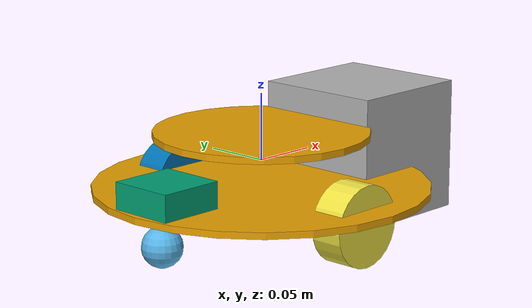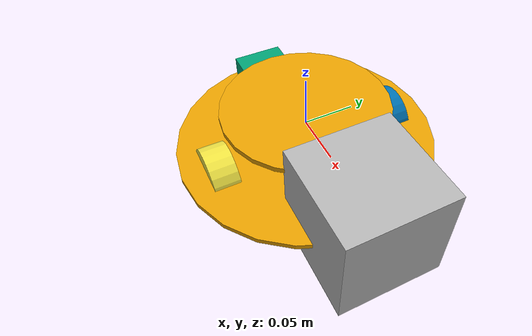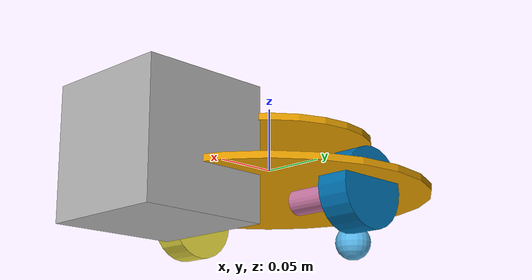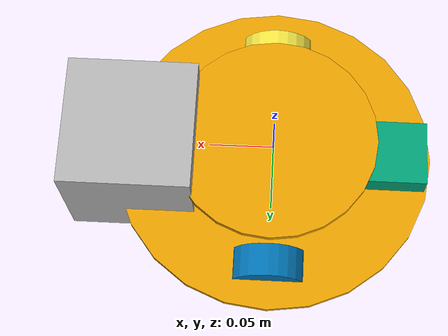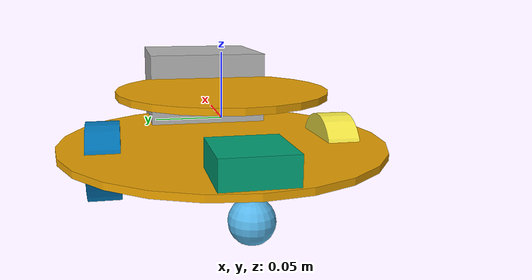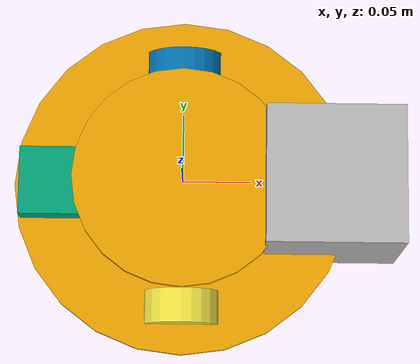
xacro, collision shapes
<?xml version="1.0" ?>

<robot name="vcr" xmlns:xacro="https://www.ros.org/wiki/xacro" >

  <xacro:include filename="$(find vcr_description)/urdf/materials.xacro" />
  <xacro:include filename="$(find vcr_description)/urdf/gazebo.xacro" />
  <xacro:include filename="$(find vcr_description)/urdf/macro.xacro" />

  <!-- Defining link chassis -->
  <link name="link_chassis">
    <!-- pose and inertial -->
    <pose>0 0 0.06 0 0 0</pose>

    <!-- Inertial properties -->
    <inertial>
      <mass value="0.5"/>
      <origin rpy="0 0 0" xyz="0 0 0"/>
      <xacro:cylinder_inertia mass="0.3" r="0.125" l="0.005" />
    </inertial>
    <!-- Collision properties -->
    <collision name="collision_chassis1">
      <origin rpy="0 0 0" xyz="0 0 -0.02"/>
      <geometry>
       <cylinder length="0.005" radius="0.125"/>
      </geometry>
    </collision>
    <!-- Visual properties -->
    <visual name="viasual_chassis1">
      <origin rpy="0 0 1.5707" xyz="0 0 -0.0735"/>
      <geometry>
        <mesh filename= "package://vcr_description/meshes/chassis_metter.dae/chassis.dae" scale ="1 1 1"/>
      </geometry>
    </visual>
    <collision name="collision_chassis2">
      <origin rpy="0 0 0" xyz="0 0 0.02"/>
      <geometry>
       <cylinder length="0.005" radius="0.08"/>
      </geometry>
    </collision>

  </link>

<link name="link_roller_ball">
    <pose> 0 0 0 0 0 0</pose>
    <inertial>
      <mass value="0.05"/>
      <origin rpy="0 0 0" xyz="0 0 0"/>
      <xacro:sphere_inertia mass="0.05" r="0.015"/>
    </inertial>
    <collision name="roller_ball_collision">
      <origin rpy=" 0 0 0" xyz="0 0 0"/>
      <geometry>
        <sphere radius="0.015"/>
      </geometry>
      <surface>
        <friction>
          <ode>
            <mu>0</mu>
            <mu2>0</mu2>
            <slip1>1.0</slip1>
            <slip2>1.0</slip2>
          </ode>
        </friction>
      </surface>
    </collision>
    <visual name="roller_ball_visual">
      <origin rpy=" 0 0 0" xyz="0.015 0 -0.005"/>
      <geometry>
        <mesh filename="package://vcr_description/meshes/roller.dae/roller.dae" scale="1 1 1"/>
      </geometry>
    </visual>
</link>

<!-- joint_roller center-->
   <joint name="joint_roller_ball" type="fixed">
       <origin rpy="0 0 0" xyz="-0.1 0 -0.044"/>
       <child link="link_roller_ball" />
       <parent link="link_chassis" />
    </joint>

<!--pin-->
  <link name="link_pin">
    <pose> 0 0 0 0 0 0</pose>
    <inertial>
      <mass value="0.6"/>
      <origin rpy="0 0 0" xyz="0 0 0"/>
     <xacro:box_inertia mass="0.6" w="0.05"  d="0.05" h="0.02"/>
    </inertial>
    <collision name="pin_collision">
      <origin rpy=" 0 0 0" xyz="0 0 0"/>
      <geometry>
        <box size="0.05 0.05 0.02"/>
      </geometry>
    </collision>
    <visual name="pin_visual">
      <origin rpy=" 0 0 0" xyz="0 0 0"/>
      <geometry>
        <box size="0.05 0.05 0.02"/>
      </geometry>
    </visual>
  </link>

<!-- joint_pin -->
   <joint name="joint_pin" type="fixed">
       <origin rpy="0 0 0" xyz="-0.095 0 -0.0075"/>
       <child link="link_pin" />
       <parent link="link_chassis" />
    </joint>

  <!--
    Adding driver (motors & wheels) to the robot
  -->
  <xacro:link_wheel name="link_right_wheel" />
  <xacro:link_wheel name="link_left_wheel" />
  <xacro:link_motor name="link_right_motor"/>
  <xacro:link_motor name="link_left_motor" />
  <xacro:joint_wheel name="joint_right_wheel"  child="link_right_wheel" parent="link_chassis"  origin_xyz="0 -0.09 -0.03"  />
  <xacro:joint_wheel name="joint_left_wheel"   child="link_left_wheel" parent="link_chassis"  origin_xyz="0 0.09 -0.03"  />
  <xacro:joint_motor name="joint_right_motor" child="link_right_motor" origin_xyz="0 -0.06 -0.03" />
  <xacro:joint_motor name="joint_left_motor" child="link_left_motor" origin_xyz="0 0.06 -0.03" />
  <!--
    Adding laser scan sensors to the robot
  -->
  <xacro:rplidar_link name="rplidar_link" />
  <!-- Joint sensor -->
  <xacro:rplidar_joint name="rplidar_joint" child="rplidar_link" origin_rpy="0 0 0" origin_xyz="0.11 0 -0.0075" />

</robot>

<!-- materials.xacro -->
<!--
  We are splitting the xacro file into smaller files
-->
<robot name="vcr" xmlns:xacro="https://www.ros.org/wiki/xacro" >
  <!-- Define used colors -->
  <material name="black">
    <color rgba="0.0 0.0 0.0 1.0"/>
  </material>
  <material name="blue">
    <color rgba="0.203125 0.23828125 0.28515625 1.0"/>
  </material>
  <material name="green">
    <color rgba="0.0 0.8 0.0 1.0"/>
  </material>
  <material name="grey">
    <color rgba="0.2 0.2 0.2 1.0"/>
  </material>
  <material name="orange">
    <color rgba="1.0 0.423529411765 0.0392156862745 1.0"/>
  </material>
  <material name="brown">
    <color rgba="0.870588235294 0.811764705882 0.764705882353 1.0"/>
  </material>
  <material name="red">
    <color rgba="0.80078125 0.12890625 0.1328125 1.0"/>
  </material>
  <material name="white">
    <color rgba="1.0 1.0 1.0 1.0"/>
  </material>
</robot>

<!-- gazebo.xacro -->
<robot name="vcr" xmlns:xacro="https://www.ros.org/wiki/xacro" >
  <xacro:include filename="$(find vcr_description)/urdf/macro.xacro" />
  <!--
    Now we are ready to add control to our robot. We will add a new element called plugin to our xacro file. We will add a differential drive plugin to our robot. The new tag looks like follows:
  -->
  <gazebo>
    <plugin filename="libgazebo_ros_diff_drive.so" name="differential_drive_controller">
      <alwaysOn>true</alwaysOn>
      <updateRate>20</updateRate>
      <leftJoint>joint_left_wheel</leftJoint>
      <rightJoint>joint_right_wheel</rightJoint>
      <wheelSeparation>0.17</wheelSeparation>
      <wheelDiameter>0.06</wheelDiameter>
      <torque>0.1</torque>
      <commandTopic>cmd_vel</commandTopic>
      <odometryTopic>odom</odometryTopic>
      <odometryFrame>odom</odometryFrame>
      <robotBaseFrame>link_chassis</robotBaseFrame>
    </plugin>
  </gazebo>
  <xacro:rplidar_plugin name_link="rplidar_link" />
</robot>

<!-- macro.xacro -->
<!--
  we will use macros, which are like functions, to reduce the remaining code in r4e.xacro file.
-->
<robot xmlns:xacro="http://www.ros.org/wiki/xacro">
    <xacro:macro name="link_wheel" params="name">
        <link name="${name}">
            <inertial>
              <mass value="0.2"/>
              <origin rpy="0 1.5707 1.5707" xyz="0 0 0"/>
              <xacro:cylinder_inertia mass="0.2" r="0.03" l="0.025" />
            </inertial>
            <collision name="${name}_collision">
              <origin rpy="0 1.5707 1.5707" xyz="0 0 0"/>
              <geometry>
                <cylinder length="0.025" radius="0.03"/>
              </geometry>
            </collision>
            <visual name="${name}_visual">
              <origin rpy="0 1.5707 1.5707" xyz="0 0 0"/>
              <geometry>
                <mesh filename="package://vcr_description/meshes/wheel_.dae" scale="1 1 1"/>
              </geometry>
            </visual>
        </link>
    </xacro:macro>
    <!-- Motor-->
    <xacro:macro name="link_motor" params="name">
        <link name="${name}">.005
          <inertial>.005
            <mass value="0.3"/>.005
            <origin rpy="0 1.5707 1.5707" xyz="0 0 0"/>
            <xacro:cylinder_inertia mass="0.3" r="0.01" l="0.06" />
          </inertial>
          <collision name="${name}_collision">
            <origin rpy="0 1.5707 1.5707" xyz="0 0 0"/>
            <geometry>
                <cylinder length="0.06" radius="0.01"/>
            </geometry>
          </collision>
          <visual name="${name}_visual">
            <origin rpy="0 1.5707 1.5707" xyz="0 0 0"/>
            <geometry>
              <cylinder length="0.06" radius="0.01"/>
            </geometry>
          </visual>
        </link>
    </xacro:macro>
    <!-- joint link wheels-->
     <xacro:macro name="joint_wheel" params="name child parent origin_xyz">
      <joint name="${name}" type="continuous">
        <origin rpy="0 0 0" xyz="${origin_xyz}"/>
        <child link="${child}"/>
        <parent link="${parent}"/>
        <axis rpy="0 0 0" xyz="0 1 0"/>
        <limit effort="100" velocity="100"/>
        <joint_properties damping="0.5" friction="0.5"/>
      </joint>
    </xacro:macro>
<!-- joint link Motor-->
   <xacro:macro name="joint_motor" params="name child origin_xyz">
      <joint name="${name}" type="fixed">
        <origin rpy="0 0 0" xyz="${origin_xyz}"/>
        <child link="${child}"/>
        <parent link="link_chassis"/>
      </joint>
    </xacro:macro>

 <!-- inertia of the cylinder  -->
    <xacro:macro name="cylinder_inertia" params="mass r l">
      <inertia ixx="${mass*(3*r*r+l*l)/12}" ixy = "0" ixz = "0" iyy="${mass*(3*r*r+l*l)/12}" iyz = "0" izz="${mass*(r*r)/2}" /> <!--izz="${mass*(r*r)/2}" -->
    </xacro:macro>
<!-- inertia of sphere-->
    <xacro:macro name="sphere_inertia" params="mass r">
      <inertia ixx="${(2*mass*r*r)/5}" ixy = "0" ixz = "0" iyy="${(2*mass*r*r)/5}" iyz = "0" izz="${(2*mass*r*r)/5}" /> <!--izz="${-(2*mass*r*r)/3}"-->
    </xacro:macro>
<!--inertia of box-->
    <xacro:macro name="box_inertia" params="mass w d h">

      <inertia ixx="${mass*(h*h+w*w)/12}" ixy = "0" ixz = "0" iyy="${mass*(h*h+d*d)/12}" iyz = "0" izz="${mass*(w*w+d*d)/12}" /> <!--izz="${-mass*(h*h+w*w)/12}"-->
    </xacro:macro>
<!-- Link rplidar-->
    <xacro:macro name="rplidar_link" params="name">
        <link name="${name}">
		      <collision name="${name}_collision">
			      <origin xyz="0 0 0" rpy="0 0 0"/>
			      <geometry>
				      <box size="0.1 0.1 0.1"/>
			      </geometry>
		      </collision>

          <visual name="${name}_visual">
			      <origin xyz="-0.11 0 0.145" rpy="1.5707 0 0.78535"/>
			      <geometry>
				      <!--box size="0.1 0.1 0.1"/-->
				      <mesh filename="package://vcr_description/meshes/rplidar.dae" scale="0.001 0.001 0.001" />
			      </geometry>
		      </visual>

		      <inertial name="${name}_inertial">
			      <mass value="1e-5"/>
			      <origin xyz="0 0 0" rpy="0 0 0"/>
			      <inertia ixx="1e-6" ixy="0" ixz="0" iyy="1e-6" iyz="0" izz="1e-6"/>
		      </inertial>
	      </link>
    </xacro:macro>
<!-- Join link rplidar-->
    <xacro:macro name="rplidar_joint" params="name child origin_rpy origin_xyz">
      <joint name="${name}" type="fixed">
        <axis xyz="0 1 0"/>
        <origin rpy="${origin_rpy}" xyz="${origin_xyz}"/>
        <child link="${child}"/>
        <parent link="link_chassis"/>
      </joint>
    </xacro:macro>
<!-- Plugin Rplidar-->
    <xacro:macro name="rplidar_plugin" params="name_link">
      <gazebo reference="${name_link}">
        <sensor type="gpu_ray" name="head_rplidar_sensor">
		      <pose>0 0 0 0 0 0</pose>
		      <visualize>true</visualize>
		      <update_rate>10</update_rate>
		      <ray>
			      <scan>
				      <horizontal>
					    <samples>2000</samples>
					    <resolution>1</resolution>
					    <min_angle>-3.14159</min_angle>
					    <max_angle>3.14159</max_angle>
				      </horizontal>
			      </scan>
			      <range>
				      <min>0.15</min>
				      <max>6.0</max>
				      <resolution>0.01</resolution>
			      </range>
			      <noise>
				      <type>gaussian</type>
				      <mean>0.0</mean>
				      <stddev>0.01</stddev>
			      </noise>
		      </ray>
		      <plugin name="gazebo_ros_head_rplidar_controller" filename="libgazebo_ros_gpu_laser.so">
			      <topicName>/scan</topicName>
			      <frameName>rplidar_link</frameName>
		      </plugin>
	      </sensor>
      </gazebo>
    </xacro:macro>

</robot>
